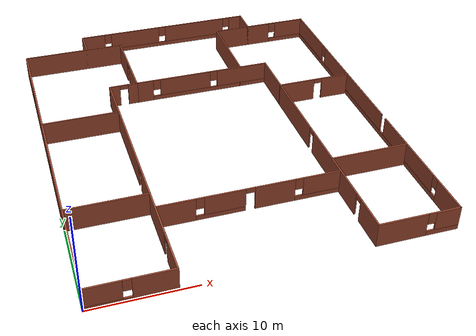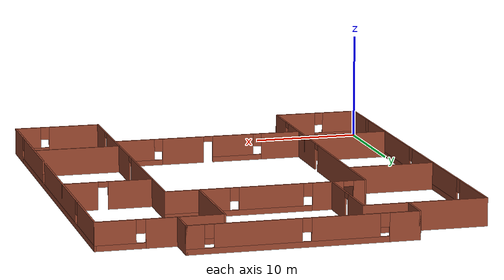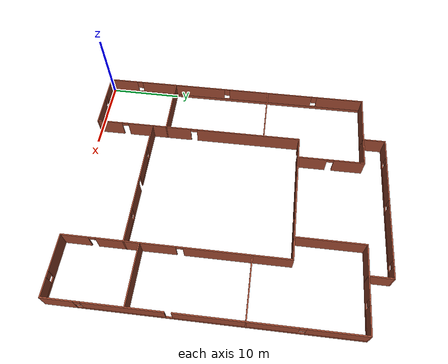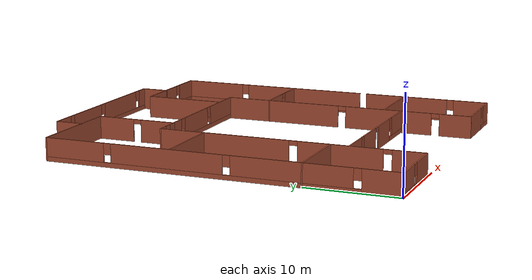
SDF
<?xml version='1.0'?>
<sdf version='1.6'>
  <model name='structure'>
    <pose frame=''>17 20.5 0 0 -0 0</pose>
    <link name='Wall_11'>
      <collision name='Wall_11_Collision'>
        <geometry>
          <box>
            <size>11.15 0.15 2.5</size>
          </box>
        </geometry>
        <pose frame=''>0 0 1.25 0 -0 0</pose>
      </collision>
      <visual name='Wall_11_Visual'>
        <pose frame=''>0 0 1.25 0 -0 0</pose>
        <geometry>
          <box>
            <size>11.15 0.15 2.5</size>
          </box>
        </geometry>
        <material>
          <script>
            <uri>file://media/materials/scripts/gazebo.material</uri>
            <name>Gazebo/Bricks</name>
          </script>
          <ambient>1 1 1 1</ambient>
        </material>
        <meta>
          <layer>0</layer>
        </meta>
      </visual>
      <pose frame=''>-11.5 17.5 0 0 -0 0</pose>
    </link>
    <link name='Wall_13'>
      <pose frame=''>-6 13 0 0 0 -1.5708</pose>
      <visual name='Wall_13_Visual_0'>
        <pose frame=''>-2.45369 0 1.25 0 -0 0</pose>
        <geometry>
          <box>
            <size>4.24262 0.15 2.5</size>
          </box>
        </geometry>
        <material>
          <script>
            <uri>file://media/materials/scripts/gazebo.material</uri>
            <name>Gazebo/Bricks</name>
          </script>
          <ambient>1 1 1 1</ambient>
        </material>
        <meta>
          <layer>0</layer>
        </meta>
      </visual>
      <collision name='Wall_13_Collision_0'>
        <geometry>
          <box>
            <size>4.24262 0.15 2.5</size>
          </box>
        </geometry>
        <pose frame=''>-2.45369 0 1.25 0 -0 0</pose>
      </collision>
      <visual name='Wall_13_Visual_1'>
        <pose frame=''>2.57131 0 1.25 0 -0 0</pose>
        <geometry>
          <box>
            <size>4.00738 0.15 2.5</size>
          </box>
        </geometry>
        <material>
          <script>
            <uri>file://media/materials/scripts/gazebo.material</uri>
            <name>Gazebo/Bricks</name>
          </script>
          <ambient>1 1 1 1</ambient>
        </material>
        <meta>
          <layer>0</layer>
        </meta>
      </visual>
      <collision name='Wall_13_Collision_1'>
        <geometry>
          <box>
            <size>4.00738 0.15 2.5</size>
          </box>
        </geometry>
        <pose frame=''>2.57131 0 1.25 0 -0 0</pose>
      </collision>
      <visual name='Wall_13_Visual_2'>
        <pose frame=''>0.117622 0 2.25 0 -0 0</pose>
        <geometry>
          <box>
            <size>0.9 0.15 0.5</size>
          </box>
        </geometry>
        <material>
          <script>
            <uri>file://media/materials/scripts/gazebo.material</uri>
            <name>Gazebo/Bricks</name>
          </script>
          <ambient>1 1 1 1</ambient>
        </material>
        <meta>
          <layer>0</layer>
        </meta>
      </visual>
      <collision name='Wall_13_Collision_2'>
        <geometry>
          <box>
            <size>0.9 0.15 0.5</size>
          </box>
        </geometry>
        <pose frame=''>0.117622 0 2.25 0 -0 0</pose>
      </collision>
    </link>
    <link name='Wall_15'>
      <pose frame=''>-7.5 8.5 0 0 -0 3.14159</pose>
      <visual name='Wall_15_Visual_0'>
        <pose frame=''>-1.03841 0 1.25 0 -0 0</pose>
        <geometry>
          <box>
            <size>1.07318 0.15 2.5</size>
          </box>
        </geometry>
        <material>
          <script>
            <uri>file://media/materials/scripts/gazebo.material</uri>
            <name>Gazebo/Bricks</name>
          </script>
          <ambient>1 1 1 1</ambient>
        </material>
        <meta>
          <layer>0</layer>
        </meta>
      </visual>
      <collision name='Wall_15_Collision_0'>
        <geometry>
          <box>
            <size>1.07318 0.15 2.5</size>
          </box>
        </geometry>
        <pose frame=''>-1.03841 0 1.25 0 -0 0</pose>
      </collision>
      <visual name='Wall_15_Visual_1'>
        <pose frame=''>0.98659 0 1.25 0 -0 0</pose>
        <geometry>
          <box>
            <size>1.17682 0.15 2.5</size>
          </box>
        </geometry>
        <material>
          <script>
            <uri>file://media/materials/scripts/gazebo.material</uri>
            <name>Gazebo/Bricks</name>
          </script>
          <ambient>1 1 1 1</ambient>
        </material>
        <meta>
          <layer>0</layer>
        </meta>
      </visual>
      <collision name='Wall_15_Collision_1'>
        <geometry>
          <box>
            <size>1.17682 0.15 2.5</size>
          </box>
        </geometry>
        <pose frame=''>0.98659 0 1.25 0 -0 0</pose>
      </collision>
      <visual name='Wall_15_Visual_2'>
        <pose frame=''>-0.051821 0 2.25 0 -0 0</pose>
        <geometry>
          <box>
            <size>0.9 0.15 0.5</size>
          </box>
        </geometry>
        <material>
          <script>
            <uri>file://media/materials/scripts/gazebo.material</uri>
            <name>Gazebo/Bricks</name>
          </script>
          <ambient>1 1 1 1</ambient>
        </material>
        <meta>
          <layer>0</layer>
        </meta>
      </visual>
      <collision name='Wall_15_Collision_2'>
        <geometry>
          <box>
            <size>0.9 0.15 0.5</size>
          </box>
        </geometry>
        <pose frame=''>-0.051821 0 2.25 0 -0 0</pose>
      </collision>
    </link>
    <link name='Wall_19'>
      <pose frame=''>-9 -6 0 0 0 -1.5708</pose>
      <visual name='Wall_19_Visual_0'>
        <pose frame=''>-7.2625 0 1.25 0 -0 0</pose>
        <geometry>
          <box>
            <size>14.625 0.15 2.5</size>
          </box>
        </geometry>
        <material>
          <script>
            <uri>file://media/materials/scripts/gazebo.material</uri>
            <name>Gazebo/Bricks</name>
          </script>
          <ambient>1 1 1 1</ambient>
        </material>
        <meta>
          <layer>0</layer>
        </meta>
      </visual>
      <collision name='Wall_19_Collision_0'>
        <geometry>
          <box>
            <size>14.625 0.15 2.5</size>
          </box>
        </geometry>
        <pose frame=''>-7.2625 0 1.25 0 -0 0</pose>
      </collision>
      <visual name='Wall_19_Visual_1'>
        <pose frame=''>5.5 0 1.25 0 -0 0</pose>
        <geometry>
          <box>
            <size>9.1 0.15 2.5</size>
          </box>
        </geometry>
        <material>
          <script>
            <uri>file://media/materials/scripts/gazebo.material</uri>
            <name>Gazebo/Bricks</name>
          </script>
          <ambient>1 1 1 1</ambient>
        </material>
        <meta>
          <layer>0</layer>
        </meta>
      </visual>
      <collision name='Wall_19_Collision_1'>
        <geometry>
          <box>
            <size>9.1 0.15 2.5</size>
          </box>
        </geometry>
        <pose frame=''>5.5 0 1.25 0 -0 0</pose>
      </collision>
      <visual name='Wall_19_Visual_2'>
        <pose frame=''>12.7625 0 1.25 0 -0 0</pose>
        <geometry>
          <box>
            <size>3.625 0.15 2.5</size>
          </box>
        </geometry>
        <material>
          <script>
            <uri>file://media/materials/scripts/gazebo.material</uri>
            <name>Gazebo/Bricks</name>
          </script>
          <ambient>1 1 1 1</ambient>
        </material>
        <meta>
          <layer>0</layer>
        </meta>
      </visual>
      <collision name='Wall_19_Collision_2'>
        <geometry>
          <box>
            <size>3.625 0.15 2.5</size>
          </box>
        </geometry>
        <pose frame=''>12.7625 0 1.25 0 -0 0</pose>
      </collision>
      <visual name='Wall_19_Visual_3'>
        <pose frame=''>0.5 0 2.25 0 -0 0</pose>
        <geometry>
          <box>
            <size>0.9 0.15 0.5</size>
          </box>
        </geometry>
        <material>
          <script>
            <uri>file://media/materials/scripts/gazebo.material</uri>
            <name>Gazebo/Bricks</name>
          </script>
          <ambient>1 1 1 1</ambient>
        </material>
        <meta>
          <layer>0</layer>
        </meta>
      </visual>
      <collision name='Wall_19_Collision_3'>
        <geometry>
          <box>
            <size>0.9 0.15 0.5</size>
          </box>
        </geometry>
        <pose frame=''>0.5 0 2.25 0 -0 0</pose>
      </collision>
      <visual name='Wall_19_Visual_4'>
        <pose frame=''>10.5 0 2.25 0 -0 0</pose>
        <geometry>
          <box>
            <size>0.9 0.15 0.5</size>
          </box>
        </geometry>
        <material>
          <script>
            <uri>file://media/materials/scripts/gazebo.material</uri>
            <name>Gazebo/Bricks</name>
          </script>
          <ambient>1 1 1 1</ambient>
        </material>
        <meta>
          <layer>0</layer>
        </meta>
      </visual>
      <collision name='Wall_19_Collision_4'>
        <geometry>
          <box>
            <size>0.9 0.15 0.5</size>
          </box>
        </geometry>
        <pose frame=''>10.5 0 2.25 0 -0 0</pose>
      </collision>
    </link>
    <link name='Wall_21'>
      <pose frame=''>-13 -20.5 0 0 -0 3.14159</pose>
      <visual name='Wall_21_Visual_0'>
        <pose frame=''>-2.10298 0 1.25 0 -0 0</pose>
        <geometry>
          <box>
            <size>3.94403 0.15 2.5</size>
          </box>
        </geometry>
        <material>
          <script>
            <uri>file://media/materials/scripts/gazebo.material</uri>
            <name>Gazebo/Bricks</name>
          </script>
          <ambient>1 1 1 1</ambient>
        </material>
        <meta>
          <layer>0</layer>
        </meta>
      </visual>
      <collision name='Wall_21_Collision_0'>
        <geometry>
          <box>
            <size>3.94403 0.15 2.5</size>
          </box>
        </geometry>
        <pose frame=''>-2.10298 0 1.25 0 -0 0</pose>
      </collision>
      <visual name='Wall_21_Visual_1'>
        <pose frame=''>1.97202 0 0.25 0 -0 0</pose>
        <geometry>
          <box>
            <size>4.20597 0.15 0.5</size>
          </box>
        </geometry>
        <material>
          <script>
            <uri>file://media/materials/scripts/gazebo.material</uri>
            <name>Gazebo/Bricks</name>
          </script>
          <ambient>1 1 1 1</ambient>
        </material>
        <meta>
          <layer>0</layer>
        </meta>
      </visual>
      <collision name='Wall_21_Collision_1'>
        <geometry>
          <box>
            <size>4.20597 0.15 0.5</size>
          </box>
        </geometry>
        <pose frame=''>1.97202 0 0.25 0 -0 0</pose>
      </collision>
      <visual name='Wall_21_Visual_2'>
        <pose frame=''>2.37202 0 1.5 0 -0 0</pose>
        <geometry>
          <box>
            <size>3.40597 0.15 2</size>
          </box>
        </geometry>
        <material>
          <script>
            <uri>file://media/materials/scripts/gazebo.material</uri>
            <name>Gazebo/Bricks</name>
          </script>
          <ambient>1 1 1 1</ambient>
        </material>
        <meta>
          <layer>0</layer>
        </meta>
      </visual>
      <collision name='Wall_21_Collision_2'>
        <geometry>
          <box>
            <size>3.40597 0.15 2</size>
          </box>
        </geometry>
        <pose frame=''>2.37202 0 1.5 0 -0 0</pose>
      </collision>
      <visual name='Wall_21_Visual_3'>
        <pose frame=''>0.269032 0 1.9 0 -0 0</pose>
        <geometry>
          <box>
            <size>0.8 0.15 1.2</size>
          </box>
        </geometry>
        <material>
          <script>
            <uri>file://media/materials/scripts/gazebo.material</uri>
            <name>Gazebo/Bricks</name>
          </script>
          <ambient>1 1 1 1</ambient>
        </material>
        <meta>
          <layer>0</layer>
        </meta>
      </visual>
      <collision name='Wall_21_Collision_3'>
        <geometry>
          <box>
            <size>0.8 0.15 1.2</size>
          </box>
        </geometry>
        <pose frame=''>0.269032 0 1.9 0 -0 0</pose>
      </collision>
    </link>
    <link name='Wall_23'>
      <collision name='Wall_23_Collision'>
        <geometry>
          <box>
            <size>8.15 0.15 2.5</size>
          </box>
        </geometry>
        <pose frame=''>0 0 1.25 0 -0 0</pose>
      </collision>
      <visual name='Wall_23_Visual'>
        <pose frame=''>0 0 1.25 0 -0 0</pose>
        <geometry>
          <box>
            <size>8.15 0.15 2.5</size>
          </box>
        </geometry>
        <material>
          <script>
            <uri>file://media/materials/scripts/gazebo.material</uri>
            <name>Gazebo/Bricks</name>
          </script>
          <ambient>1 1 1 1</ambient>
        </material>
        <meta>
          <layer>0</layer>
        </meta>
      </visual>
      <pose frame=''>-13 3.5 0 0 -0 3.14159</pose>
    </link>
    <link name='Wall_25'>
      <collision name='Wall_25_Collision'>
        <geometry>
          <box>
            <size>8.15 0.15 2.5</size>
          </box>
        </geometry>
        <pose frame=''>0 0 1.25 0 -0 0</pose>
      </collision>
      <visual name='Wall_25_Visual'>
        <pose frame=''>0 0 1.25 0 -0 0</pose>
        <geometry>
          <box>
            <size>8.15 0.15 2.5</size>
          </box>
        </geometry>
        <material>
          <script>
            <uri>file://media/materials/scripts/gazebo.material</uri>
            <name>Gazebo/Bricks</name>
          </script>
          <ambient>0.921569 0.807843 0.615686 1</ambient>
        </material>
        <meta>
          <layer>0</layer>
        </meta>
      </visual>
      <pose frame=''>-13 -10.5 0 0 -0 3.14159</pose>
    </link>
    <link name='Wall_27'>
      <pose frame=''>1e-06 -12.5 0 0 -0 0</pose>
      <visual name='Wall_27_Visual_0'>
        <pose frame=''>-7.15272 0 1.25 0 -0 0</pose>
        <geometry>
          <box>
            <size>3.84455 0.15 2.5</size>
          </box>
        </geometry>
        <material>
          <script>
            <uri>file://media/materials/scripts/gazebo.material</uri>
            <name>Gazebo/Bricks</name>
          </script>
          <ambient>0.921569 0.807843 0.615686 1</ambient>
        </material>
        <meta>
          <layer>0</layer>
        </meta>
      </visual>
      <collision name='Wall_27_Collision_0'>
        <geometry>
          <box>
            <size>3.84455 0.15 2.5</size>
          </box>
        </geometry>
        <pose frame=''>-7.15272 0 1.25 0 -0 0</pose>
      </collision>
      <visual name='Wall_27_Visual_1'>
        <pose frame=''>2.43616 0 1.25 0 -0 0</pose>
        <geometry>
          <box>
            <size>3.97232 0.15 2.5</size>
          </box>
        </geometry>
        <material>
          <script>
            <uri>file://media/materials/scripts/gazebo.material</uri>
            <name>Gazebo/Bricks</name>
          </script>
          <ambient>0.921569 0.807843 0.615686 1</ambient>
        </material>
        <meta>
          <layer>0</layer>
        </meta>
      </visual>
      <collision name='Wall_27_Collision_1'>
        <geometry>
          <box>
            <size>3.97232 0.15 2.5</size>
          </box>
        </geometry>
        <pose frame=''>2.43616 0 1.25 0 -0 0</pose>
      </collision>
      <visual name='Wall_27_Visual_2'>
        <pose frame=''>-2.84022 0 0.25 0 -0 0</pose>
        <geometry>
          <box>
            <size>4.78045 0.15 0.5</size>
          </box>
        </geometry>
        <material>
          <script>
            <uri>file://media/materials/scripts/gazebo.material</uri>
            <name>Gazebo/Bricks</name>
          </script>
          <ambient>0.921569 0.807843 0.615686 1</ambient>
        </material>
        <meta>
          <layer>0</layer>
        </meta>
      </visual>
      <collision name='Wall_27_Collision_2'>
        <geometry>
          <box>
            <size>4.78045 0.15 0.5</size>
          </box>
        </geometry>
        <pose frame=''>-2.84022 0 0.25 0 -0 0</pose>
      </collision>
      <visual name='Wall_27_Visual_3'>
        <pose frame=''>6.74866 0 0.25 0 -0 0</pose>
        <geometry>
          <box>
            <size>4.65268 0.15 0.5</size>
          </box>
        </geometry>
        <material>
          <script>
            <uri>file://media/materials/scripts/gazebo.material</uri>
            <name>Gazebo/Bricks</name>
          </script>
          <ambient>0.921569 0.807843 0.615686 1</ambient>
        </material>
        <meta>
          <layer>0</layer>
        </meta>
      </visual>
      <collision name='Wall_27_Collision_3'>
        <geometry>
          <box>
            <size>4.65268 0.15 0.5</size>
          </box>
        </geometry>
        <pose frame=''>6.74866 0 0.25 0 -0 0</pose>
      </collision>
      <visual name='Wall_27_Visual_4'>
        <pose frame=''>-2.44022 0 1.5 0 -0 0</pose>
        <geometry>
          <box>
            <size>3.98045 0.15 2</size>
          </box>
        </geometry>
        <material>
          <script>
            <uri>file://media/materials/scripts/gazebo.material</uri>
            <name>Gazebo/Bricks</name>
          </script>
          <ambient>0.921569 0.807843 0.615686 1</ambient>
        </material>
        <meta>
          <layer>0</layer>
        </meta>
      </visual>
      <collision name='Wall_27_Collision_4'>
        <geometry>
          <box>
            <size>3.98045 0.15 2</size>
          </box>
        </geometry>
        <pose frame=''>-2.44022 0 1.5 0 -0 0</pose>
      </collision>
      <visual name='Wall_27_Visual_5'>
        <pose frame=''>-2.44022 0 1.5 0 -0 0</pose>
        <geometry>
          <box>
            <size>3.98045 0.15 2</size>
          </box>
        </geometry>
        <material>
          <script>
            <uri>file://media/materials/scripts/gazebo.material</uri>
            <name>Gazebo/Bricks</name>
          </script>
          <ambient>0.921569 0.807843 0.615686 1</ambient>
        </material>
        <meta>
          <layer>0</layer>
        </meta>
      </visual>
      <collision name='Wall_27_Collision_5'>
        <geometry>
          <box>
            <size>3.98045 0.15 2</size>
          </box>
        </geometry>
        <pose frame=''>-2.44022 0 1.5 0 -0 0</pose>
      </collision>
      <visual name='Wall_27_Visual_6'>
        <pose frame=''>7.14866 0 1.5 0 -0 0</pose>
        <geometry>
          <box>
            <size>3.85268 0.15 2</size>
          </box>
        </geometry>
        <material>
          <script>
            <uri>file://media/materials/scripts/gazebo.material</uri>
            <name>Gazebo/Bricks</name>
          </script>
          <ambient>0.921569 0.807843 0.615686 1</ambient>
        </material>
        <meta>
          <layer>0</layer>
        </meta>
      </visual>
      <collision name='Wall_27_Collision_6'>
        <geometry>
          <box>
            <size>3.85268 0.15 2</size>
          </box>
        </geometry>
        <pose frame=''>7.14866 0 1.5 0 -0 0</pose>
      </collision>
      <visual name='Wall_27_Visual_7'>
        <pose frame=''>-4.83045 0 1.9 0 -0 0</pose>
        <geometry>
          <box>
            <size>0.8 0.15 1.2</size>
          </box>
        </geometry>
        <material>
          <script>
            <uri>file://media/materials/scripts/gazebo.material</uri>
            <name>Gazebo/Bricks</name>
          </script>
          <ambient>0.921569 0.807843 0.615686 1</ambient>
        </material>
        <meta>
          <layer>0</layer>
        </meta>
      </visual>
      <collision name='Wall_27_Collision_7'>
        <geometry>
          <box>
            <size>0.8 0.15 1.2</size>
          </box>
        </geometry>
        <pose frame=''>-4.83045 0 1.9 0 -0 0</pose>
      </collision>
      <visual name='Wall_27_Visual_8'>
        <pose frame=''>4.82232 0 1.9 0 -0 0</pose>
        <geometry>
          <box>
            <size>0.8 0.15 1.2</size>
          </box>
        </geometry>
        <material>
          <script>
            <uri>file://media/materials/scripts/gazebo.material</uri>
            <name>Gazebo/Bricks</name>
          </script>
          <ambient>0.921569 0.807843 0.615686 1</ambient>
        </material>
        <meta>
          <layer>0</layer>
        </meta>
      </visual>
      <collision name='Wall_27_Collision_8'>
        <geometry>
          <box>
            <size>0.8 0.15 1.2</size>
          </box>
        </geometry>
        <pose frame=''>4.82232 0 1.9 0 -0 0</pose>
      </collision>
      <visual name='Wall_27_Visual_9'>
        <pose frame=''>0 0 2.25 0 -0 0</pose>
        <geometry>
          <box>
            <size>0.9 0.15 0.5</size>
          </box>
        </geometry>
        <material>
          <script>
            <uri>file://media/materials/scripts/gazebo.material</uri>
            <name>Gazebo/Bricks</name>
          </script>
          <ambient>0.921569 0.807843 0.615686 1</ambient>
        </material>
        <meta>
          <layer>0</layer>
        </meta>
      </visual>
      <collision name='Wall_27_Collision_9'>
        <geometry>
          <box>
            <size>0.9 0.15 0.5</size>
          </box>
        </geometry>
        <pose frame=''>0 0 2.25 0 -0 0</pose>
      </collision>
      <visual name='Wall_27_Visual_10'>
        <pose frame=''>0 0 2.25 0 -0 0</pose>
        <geometry>
          <box>
            <size>0.9 0.15 0.5</size>
          </box>
        </geometry>
        <material>
          <script>
            <uri>file://media/materials/scripts/gazebo.material</uri>
            <name>Gazebo/Bricks</name>
          </script>
          <ambient>0.921569 0.807843 0.615686 1</ambient>
        </material>
        <meta>
          <layer>0</layer>
        </meta>
      </visual>
      <collision name='Wall_27_Collision_10'>
        <geometry>
          <box>
            <size>0.9 0.15 0.5</size>
          </box>
        </geometry>
        <pose frame=''>0 0 2.25 0 -0 0</pose>
      </collision>
    </link>
    <link name='Wall_29'>
      <pose frame=''>1.5 8.5 0 0 -0 0</pose>
      <visual name='Wall_29_Visual_0'>
        <pose frame=''>-6.61866 0 1.25 0 -0 0</pose>
        <geometry>
          <box>
            <size>1.91268 0.15 2.5</size>
          </box>
        </geometry>
        <material>
          <script>
            <uri>file://media/materials/scripts/gazebo.material</uri>
            <name>Gazebo/Bricks</name>
          </script>
          <ambient>1 1 1 1</ambient>
        </material>
        <meta>
          <layer>0</layer>
        </meta>
      </visual>
      <collision name='Wall_29_Collision_0'>
        <geometry>
          <box>
            <size>1.91268 0.15 2.5</size>
          </box>
        </geometry>
        <pose frame=''>-6.61866 0 1.25 0 -0 0</pose>
      </collision>
      <visual name='Wall_29_Visual_1'>
        <pose frame=''>0.956339 0 0.25 0 -0 0</pose>
        <geometry>
          <box>
            <size>13.2373 0.15 0.5</size>
          </box>
        </geometry>
        <material>
          <script>
            <uri>file://media/materials/scripts/gazebo.material</uri>
            <name>Gazebo/Bricks</name>
          </script>
          <ambient>1 1 1 1</ambient>
        </material>
        <meta>
          <layer>0</layer>
        </meta>
      </visual>
      <collision name='Wall_29_Collision_1'>
        <geometry>
          <box>
            <size>13.2373 0.15 0.5</size>
          </box>
        </geometry>
        <pose frame=''>0.956339 0 0.25 0 -0 0</pose>
      </collision>
      <visual name='Wall_29_Visual_2'>
        <pose frame=''>-1.96235 0 1.5 0 -0 0</pose>
        <geometry>
          <box>
            <size>5.79994 0.15 2</size>
          </box>
        </geometry>
        <material>
          <script>
            <uri>file://media/materials/scripts/gazebo.material</uri>
            <name>Gazebo/Bricks</name>
          </script>
          <ambient>1 1 1 1</ambient>
        </material>
        <meta>
          <layer>0</layer>
        </meta>
      </visual>
      <collision name='Wall_29_Collision_2'>
        <geometry>
          <box>
            <size>5.79994 0.15 2</size>
          </box>
        </geometry>
        <pose frame=''>-1.96235 0 1.5 0 -0 0</pose>
      </collision>
      <visual name='Wall_29_Visual_3'>
        <pose frame=''>4.65631 0 1.5 0 -0 0</pose>
        <geometry>
          <box>
            <size>5.83739 0.15 2</size>
          </box>
        </geometry>
        <material>
          <script>
            <uri>file://media/materials/scripts/gazebo.material</uri>
            <name>Gazebo/Bricks</name>
          </script>
          <ambient>1 1 1 1</ambient>
        </material>
        <meta>
          <layer>0</layer>
        </meta>
      </visual>
      <collision name='Wall_29_Collision_3'>
        <geometry>
          <box>
            <size>5.83739 0.15 2</size>
          </box>
        </geometry>
        <pose frame=''>4.65631 0 1.5 0 -0 0</pose>
      </collision>
      <visual name='Wall_29_Visual_4'>
        <pose frame=''>-5.26232 0 1.9 0 -0 0</pose>
        <geometry>
          <box>
            <size>0.8 0.15 1.2</size>
          </box>
        </geometry>
        <material>
          <script>
            <uri>file://media/materials/scripts/gazebo.material</uri>
            <name>Gazebo/Bricks</name>
          </script>
          <ambient>1 1 1 1</ambient>
        </material>
        <meta>
          <layer>0</layer>
        </meta>
      </visual>
      <collision name='Wall_29_Collision_4'>
        <geometry>
          <box>
            <size>0.8 0.15 1.2</size>
          </box>
        </geometry>
        <pose frame=''>-5.26232 0 1.9 0 -0 0</pose>
      </collision>
      <visual name='Wall_29_Visual_5'>
        <pose frame=''>1.33761 0 1.9 0 -0 0</pose>
        <geometry>
          <box>
            <size>0.8 0.15 1.2</size>
          </box>
        </geometry>
        <material>
          <script>
            <uri>file://media/materials/scripts/gazebo.material</uri>
            <name>Gazebo/Bricks</name>
          </script>
          <ambient>1 1 1 1</ambient>
        </material>
        <meta>
          <layer>0</layer>
        </meta>
      </visual>
      <collision name='Wall_29_Collision_5'>
        <geometry>
          <box>
            <size>0.8 0.15 1.2</size>
          </box>
        </geometry>
        <pose frame=''>1.33761 0 1.9 0 -0 0</pose>
      </collision>
    </link>
    <link name='Wall_31'>
      <pose frame=''>9 -6 0 0 0 -1.5708</pose>
      <visual name='Wall_31_Visual_0'>
        <pose frame=''>-7.7625 0 1.25 0 -0 0</pose>
        <geometry>
          <box>
            <size>13.625 0.15 2.5</size>
          </box>
        </geometry>
        <material>
          <script>
            <uri>file://media/materials/scripts/gazebo.material</uri>
            <name>Gazebo/Bricks</name>
          </script>
          <ambient>1 1 1 1</ambient>
        </material>
        <meta>
          <layer>0</layer>
        </meta>
      </visual>
      <collision name='Wall_31_Collision_0'>
        <geometry>
          <box>
            <size>13.625 0.15 2.5</size>
          </box>
        </geometry>
        <pose frame=''>-7.7625 0 1.25 0 -0 0</pose>
      </collision>
      <visual name='Wall_31_Visual_1'>
        <pose frame=''>5 0 1.25 0 -0 0</pose>
        <geometry>
          <box>
            <size>10.1 0.15 2.5</size>
          </box>
        </geometry>
        <material>
          <script>
            <uri>file://media/materials/scripts/gazebo.material</uri>
            <name>Gazebo/Bricks</name>
          </script>
          <ambient>1 1 1 1</ambient>
        </material>
        <meta>
          <layer>0</layer>
        </meta>
      </visual>
      <collision name='Wall_31_Collision_1'>
        <geometry>
          <box>
            <size>10.1 0.15 2.5</size>
          </box>
        </geometry>
        <pose frame=''>5 0 1.25 0 -0 0</pose>
      </collision>
      <visual name='Wall_31_Visual_2'>
        <pose frame=''>12.7625 0 1.25 0 -0 0</pose>
        <geometry>
          <box>
            <size>3.625 0.15 2.5</size>
          </box>
        </geometry>
        <material>
          <script>
            <uri>file://media/materials/scripts/gazebo.material</uri>
            <name>Gazebo/Bricks</name>
          </script>
          <ambient>1 1 1 1</ambient>
        </material>
        <meta>
          <layer>0</layer>
        </meta>
      </visual>
      <collision name='Wall_31_Collision_2'>
        <geometry>
          <box>
            <size>3.625 0.15 2.5</size>
          </box>
        </geometry>
        <pose frame=''>12.7625 0 1.25 0 -0 0</pose>
      </collision>
      <visual name='Wall_31_Visual_3'>
        <pose frame=''>-0.5 0 2.25 0 -0 0</pose>
        <geometry>
          <box>
            <size>0.9 0.15 0.5</size>
          </box>
        </geometry>
        <material>
          <script>
            <uri>file://media/materials/scripts/gazebo.material</uri>
            <name>Gazebo/Bricks</name>
          </script>
          <ambient>1 1 1 1</ambient>
        </material>
        <meta>
          <layer>0</layer>
        </meta>
      </visual>
      <collision name='Wall_31_Collision_3'>
        <geometry>
          <box>
            <size>0.9 0.15 0.5</size>
          </box>
        </geometry>
        <pose frame=''>-0.5 0 2.25 0 -0 0</pose>
      </collision>
      <visual name='Wall_31_Visual_4'>
        <pose frame=''>10.5 0 2.25 0 -0 0</pose>
        <geometry>
          <box>
            <size>0.9 0.15 0.5</size>
          </box>
        </geometry>
        <material>
          <script>
            <uri>file://media/materials/scripts/gazebo.material</uri>
            <name>Gazebo/Bricks</name>
          </script>
          <ambient>1 1 1 1</ambient>
        </material>
        <meta>
          <layer>0</layer>
        </meta>
      </visual>
      <collision name='Wall_31_Collision_4'>
        <geometry>
          <box>
            <size>0.9 0.15 0.5</size>
          </box>
        </geometry>
        <pose frame=''>10.5 0 2.25 0 -0 0</pose>
      </collision>
    </link>
    <link name='Wall_33'>
      <pose frame=''>13 -20.5 0 0 -0 0</pose>
      <visual name='Wall_33_Visual_0'>
        <pose frame=''>-1.62137 0 1.25 0 -0 0</pose>
        <geometry>
          <box>
            <size>4.90725 0.15 2.5</size>
          </box>
        </geometry>
        <material>
          <script>
            <uri>file://media/materials/scripts/gazebo.material</uri>
            <name>Gazebo/Bricks</name>
          </script>
          <ambient>1 1 1 1</ambient>
        </material>
        <meta>
          <layer>0</layer>
        </meta>
      </visual>
      <collision name='Wall_33_Collision_0'>
        <geometry>
          <box>
            <size>4.90725 0.15 2.5</size>
          </box>
        </geometry>
        <pose frame=''>-1.62137 0 1.25 0 -0 0</pose>
      </collision>
      <visual name='Wall_33_Visual_1'>
        <pose frame=''>2.45363 0 0.25 0 -0 0</pose>
        <geometry>
          <box>
            <size>3.24275 0.15 0.5</size>
          </box>
        </geometry>
        <material>
          <script>
            <uri>file://media/materials/scripts/gazebo.material</uri>
            <name>Gazebo/Bricks</name>
          </script>
          <ambient>1 1 1 1</ambient>
        </material>
        <meta>
          <layer>0</layer>
        </meta>
      </visual>
      <collision name='Wall_33_Collision_1'>
        <geometry>
          <box>
            <size>3.24275 0.15 0.5</size>
          </box>
        </geometry>
        <pose frame=''>2.45363 0 0.25 0 -0 0</pose>
      </collision>
      <visual name='Wall_33_Visual_2'>
        <pose frame=''>2.85363 0 1.5 0 -0 0</pose>
        <geometry>
          <box>
            <size>2.44275 0.15 2</size>
          </box>
        </geometry>
        <material>
          <script>
            <uri>file://media/materials/scripts/gazebo.material</uri>
            <name>Gazebo/Bricks</name>
          </script>
          <ambient>1 1 1 1</ambient>
        </material>
        <meta>
          <layer>0</layer>
        </meta>
      </visual>
      <collision name='Wall_33_Collision_2'>
        <geometry>
          <box>
            <size>2.44275 0.15 2</size>
          </box>
        </geometry>
        <pose frame=''>2.85363 0 1.5 0 -0 0</pose>
      </collision>
      <visual name='Wall_33_Visual_3'>
        <pose frame=''>1.23225 0 1.9 0 -0 0</pose>
        <geometry>
          <box>
            <size>0.8 0.15 1.2</size>
          </box>
        </geometry>
        <material>
          <script>
            <uri>file://media/materials/scripts/gazebo.material</uri>
            <name>Gazebo/Bricks</name>
          </script>
          <ambient>1 1 1 1</ambient>
        </material>
        <meta>
          <layer>0</layer>
        </meta>
      </visual>
      <collision name='Wall_33_Collision_3'>
        <geometry>
          <box>
            <size>0.8 0.15 1.2</size>
          </box>
        </geometry>
        <pose frame=''>1.23225 0 1.9 0 -0 0</pose>
      </collision>
    </link>
    <link name='Wall_35'>
      <pose frame=''>13 3.5 0 0 -0 0</pose>
      <visual name='Wall_35_Visual_0'>
        <pose frame=''>-2.04491 0 1.25 0 -0 0</pose>
        <geometry>
          <box>
            <size>4.06018 0.15 2.5</size>
          </box>
        </geometry>
        <material>
          <script>
            <uri>file://media/materials/scripts/gazebo.material</uri>
            <name>Gazebo/Bricks</name>
          </script>
          <ambient>1 1 1 1</ambient>
        </material>
        <meta>
          <layer>0</layer>
        </meta>
      </visual>
      <collision name='Wall_35_Collision_0'>
        <geometry>
          <box>
            <size>4.06018 0.15 2.5</size>
          </box>
        </geometry>
        <pose frame=''>-2.04491 0 1.25 0 -0 0</pose>
      </collision>
      <visual name='Wall_35_Visual_1'>
        <pose frame=''>2.48009 0 1.25 0 -0 0</pose>
        <geometry>
          <box>
            <size>3.18982 0.15 2.5</size>
          </box>
        </geometry>
        <material>
          <script>
            <uri>file://media/materials/scripts/gazebo.material</uri>
            <name>Gazebo/Bricks</name>
          </script>
          <ambient>1 1 1 1</ambient>
        </material>
        <meta>
          <layer>0</layer>
        </meta>
      </visual>
      <collision name='Wall_35_Collision_1'>
        <geometry>
          <box>
            <size>3.18982 0.15 2.5</size>
          </box>
        </geometry>
        <pose frame=''>2.48009 0 1.25 0 -0 0</pose>
      </collision>
      <visual name='Wall_35_Visual_2'>
        <pose frame=''>0.435177 0 2.25 0 -0 0</pose>
        <geometry>
          <box>
            <size>0.9 0.15 0.5</size>
          </box>
        </geometry>
        <material>
          <script>
            <uri>file://media/materials/scripts/gazebo.material</uri>
            <name>Gazebo/Bricks</name>
          </script>
          <ambient>1 1 1 1</ambient>
        </material>
        <meta>
          <layer>0</layer>
        </meta>
      </visual>
      <collision name='Wall_35_Collision_2'>
        <geometry>
          <box>
            <size>0.9 0.15 0.5</size>
          </box>
        </geometry>
        <pose frame=''>0.435177 0 2.25 0 -0 0</pose>
      </collision>
    </link>
    <link name='Wall_37'>
      <collision name='Wall_37_Collision'>
        <geometry>
          <box>
            <size>8.15 0.15 2.5</size>
          </box>
        </geometry>
        <pose frame=''>0 0 1.25 0 -0 0</pose>
      </collision>
      <visual name='Wall_37_Visual'>
        <pose frame=''>0 0 1.25 0 -0 0</pose>
        <geometry>
          <box>
            <size>8.15 0.15 2.5</size>
          </box>
        </geometry>
        <material>
          <script>
            <uri>file://media/materials/scripts/gazebo.material</uri>
            <name>Gazebo/Bricks</name>
          </script>
          <ambient>1 1 1 1</ambient>
        </material>
        <meta>
          <layer>0</layer>
        </meta>
      </visual>
      <pose frame=''>13 -10.5 0 0 -0 0</pose>
    </link>
    <link name='Wall_39'>
      <pose frame=''>17 -1.5 0 0 -0 1.5708</pose>
      <visual name='Wall_39_Visual_0'>
        <pose frame=''>-17.0517 0 1.25 0 -0 0</pose>
        <geometry>
          <box>
            <size>4.04653 0.15 2.5</size>
          </box>
        </geometry>
        <material>
          <script>
            <uri>file://media/materials/scripts/gazebo.material</uri>
            <name>Gazebo/Bricks</name>
          </script>
          <ambient>1 1 1 1</ambient>
        </material>
        <meta>
          <layer>0</layer>
        </meta>
      </visual>
      <collision name='Wall_39_Collision_0'>
        <geometry>
          <box>
            <size>4.04653 0.15 2.5</size>
          </box>
        </geometry>
        <pose frame=''>-17.0517 0 1.25 0 -0 0</pose>
      </collision>
      <visual name='Wall_39_Visual_1'>
        <pose frame=''>2.02327 0 0.25 0 -0 0</pose>
        <geometry>
          <box>
            <size>34.1035 0.15 0.5</size>
          </box>
        </geometry>
        <material>
          <script>
            <uri>file://media/materials/scripts/gazebo.material</uri>
            <name>Gazebo/Bricks</name>
          </script>
          <ambient>1 1 1 1</ambient>
        </material>
        <meta>
          <layer>0</layer>
        </meta>
      </visual>
      <collision name='Wall_39_Collision_1'>
        <geometry>
          <box>
            <size>34.1035 0.15 0.5</size>
          </box>
        </geometry>
        <pose frame=''>2.02327 0 0.25 0 -0 0</pose>
      </collision>
      <visual name='Wall_39_Visual_2'>
        <pose frame=''>-9.28932 0 1.5 0 -0 0</pose>
        <geometry>
          <box>
            <size>9.8783 0.15 2</size>
          </box>
        </geometry>
        <material>
          <script>
            <uri>file://media/materials/scripts/gazebo.material</uri>
            <name>Gazebo/Bricks</name>
          </script>
          <ambient>1 1 1 1</ambient>
        </material>
        <meta>
          <layer>0</layer>
        </meta>
      </visual>
      <collision name='Wall_39_Collision_2'>
        <geometry>
          <box>
            <size>9.8783 0.15 2</size>
          </box>
        </geometry>
        <pose frame=''>-9.28932 0 1.5 0 -0 0</pose>
      </collision>
      <visual name='Wall_39_Visual_3'>
        <pose frame=''>3.74165 0 1.5 0 -0 0</pose>
        <geometry>
          <box>
            <size>14.5836 0.15 2</size>
          </box>
        </geometry>
        <material>
          <script>
            <uri>file://media/materials/scripts/gazebo.material</uri>
            <name>Gazebo/Bricks</name>
          </script>
          <ambient>1 1 1 1</ambient>
        </material>
        <meta>
          <layer>0</layer>
        </meta>
      </visual>
      <collision name='Wall_39_Collision_3'>
        <geometry>
          <box>
            <size>14.5836 0.15 2</size>
          </box>
        </geometry>
        <pose frame=''>3.74165 0 1.5 0 -0 0</pose>
      </collision>
      <visual name='Wall_39_Visual_4'>
        <pose frame=''>15.4542 0 1.5 0 -0 0</pose>
        <geometry>
          <box>
            <size>7.24153 0.15 2</size>
          </box>
        </geometry>
        <material>
          <script>
            <uri>file://media/materials/scripts/gazebo.material</uri>
            <name>Gazebo/Bricks</name>
          </script>
          <ambient>1 1 1 1</ambient>
        </material>
        <meta>
          <layer>0</layer>
        </meta>
      </visual>
      <collision name='Wall_39_Collision_4'>
        <geometry>
          <box>
            <size>7.24153 0.15 2</size>
          </box>
        </geometry>
        <pose frame=''>15.4542 0 1.5 0 -0 0</pose>
      </collision>
      <visual name='Wall_39_Visual_5'>
        <pose frame=''>-14.6285 0 1.9 0 -0 0</pose>
        <geometry>
          <box>
            <size>0.8 0.15 1.2</size>
          </box>
        </geometry>
        <material>
          <script>
            <uri>file://media/materials/scripts/gazebo.material</uri>
            <name>Gazebo/Bricks</name>
          </script>
          <ambient>1 1 1 1</ambient>
        </material>
        <meta>
          <layer>0</layer>
        </meta>
      </visual>
      <collision name='Wall_39_Collision_5'>
        <geometry>
          <box>
            <size>0.8 0.15 1.2</size>
          </box>
        </geometry>
        <pose frame=''>-14.6285 0 1.9 0 -0 0</pose>
      </collision>
      <visual name='Wall_39_Visual_6'>
        <pose frame=''>-4.35017 0 1.9 0 -0 0</pose>
        <geometry>
          <box>
            <size>0.0001 0.15 1.2</size>
          </box>
        </geometry>
        <material>
          <script>
            <uri>file://media/materials/scripts/gazebo.material</uri>
            <name>Gazebo/Bricks</name>
          </script>
          <ambient>1 1 1 1</ambient>
        </material>
        <meta>
          <layer>0</layer>
        </meta>
      </visual>
      <collision name='Wall_39_Collision_6'>
        <geometry>
          <box>
            <size>0.0001 0.15 1.2</size>
          </box>
        </geometry>
        <pose frame=''>-4.35017 0 1.9 0 -0 0</pose>
      </collision>
      <visual name='Wall_39_Visual_7'>
        <pose frame=''>11.4335 0 1.9 0 -0 0</pose>
        <geometry>
          <box>
            <size>0.8 0.15 1.2</size>
          </box>
        </geometry>
        <material>
          <script>
            <uri>file://media/materials/scripts/gazebo.material</uri>
            <name>Gazebo/Bricks</name>
          </script>
          <ambient>1 1 1 1</ambient>
        </material>
        <meta>
          <layer>0</layer>
        </meta>
      </visual>
      <collision name='Wall_39_Collision_7'>
        <geometry>
          <box>
            <size>0.8 0.15 1.2</size>
          </box>
        </geometry>
        <pose frame=''>11.4335 0 1.9 0 -0 0</pose>
      </collision>
    </link>
    <link name='Wall_41'>
      <collision name='Wall_41_Collision'>
        <geometry>
          <box>
            <size>9.15 0.15 2.5</size>
          </box>
        </geometry>
        <pose frame=''>0 0 1.25 0 -0 0</pose>
      </collision>
      <visual name='Wall_41_Visual'>
        <pose frame=''>0 0 1.25 0 -0 0</pose>
        <geometry>
          <box>
            <size>9.15 0.15 2.5</size>
          </box>
        </geometry>
        <material>
          <script>
            <uri>file://media/materials/scripts/gazebo.material</uri>
            <name>Gazebo/Bricks</name>
          </script>
          <ambient>1 1 1 1</ambient>
        </material>
        <meta>
          <layer>0</layer>
        </meta>
      </visual>
      <pose frame=''>6 13 0 0 -0 1.5708</pose>
    </link>
    <link name='Wall_43'>
      <pose frame=''>11.5 17.5 0 0 -0 0</pose>
      <visual name='Wall_43_Visual_0'>
        <pose frame=''>-2.17048 0 1.25 0 -0 0</pose>
        <geometry>
          <box>
            <size>6.80905 0.15 2.5</size>
          </box>
        </geometry>
        <material>
          <script>
            <uri>file://media/materials/scripts/gazebo.material</uri>
            <name>Gazebo/Bricks</name>
          </script>
          <ambient>1 1 1 1</ambient>
        </material>
        <meta>
          <layer>0</layer>
        </meta>
      </visual>
      <collision name='Wall_43_Collision_0'>
        <geometry>
          <box>
            <size>6.80905 0.15 2.5</size>
          </box>
        </geometry>
        <pose frame=''>-2.17048 0 1.25 0 -0 0</pose>
      </collision>
      <visual name='Wall_43_Visual_1'>
        <pose frame=''>3.40452 0 0.25 0 -0 0</pose>
        <geometry>
          <box>
            <size>4.34095 0.15 0.5</size>
          </box>
        </geometry>
        <material>
          <script>
            <uri>file://media/materials/scripts/gazebo.material</uri>
            <name>Gazebo/Bricks</name>
          </script>
          <ambient>1 1 1 1</ambient>
        </material>
        <meta>
          <layer>0</layer>
        </meta>
      </visual>
      <collision name='Wall_43_Collision_1'>
        <geometry>
          <box>
            <size>4.34095 0.15 0.5</size>
          </box>
        </geometry>
        <pose frame=''>3.40452 0 0.25 0 -0 0</pose>
      </collision>
      <visual name='Wall_43_Visual_2'>
        <pose frame=''>3.80452 0 1.5 0 -0 0</pose>
        <geometry>
          <box>
            <size>3.54095 0.15 2</size>
          </box>
        </geometry>
        <material>
          <script>
            <uri>file://media/materials/scripts/gazebo.material</uri>
            <name>Gazebo/Bricks</name>
          </script>
          <ambient>1 1 1 1</ambient>
        </material>
        <meta>
          <layer>0</layer>
        </meta>
      </visual>
      <collision name='Wall_43_Collision_2'>
        <geometry>
          <box>
            <size>3.54095 0.15 2</size>
          </box>
        </geometry>
        <pose frame=''>3.80452 0 1.5 0 -0 0</pose>
      </collision>
      <visual name='Wall_43_Visual_3'>
        <pose frame=''>1.63405 0 1.9 0 -0 0</pose>
        <geometry>
          <box>
            <size>0.8 0.15 1.2</size>
          </box>
        </geometry>
        <material>
          <script>
            <uri>file://media/materials/scripts/gazebo.material</uri>
            <name>Gazebo/Bricks</name>
          </script>
          <ambient>1 1 1 1</ambient>
        </material>
        <meta>
          <layer>0</layer>
        </meta>
      </visual>
      <collision name='Wall_43_Collision_3'>
        <geometry>
          <box>
            <size>0.8 0.15 1.2</size>
          </box>
        </geometry>
        <pose frame=''>1.63405 0 1.9 0 -0 0</pose>
      </collision>
    </link>
    <link name='Wall_45'>
      <collision name='Wall_45_Collision'>
        <geometry>
          <box>
            <size>3.15 0.15 2.5</size>
          </box>
        </geometry>
        <pose frame=''>0 0 1.25 0 -0 0</pose>
      </collision>
      <visual name='Wall_45_Visual'>
        <pose frame=''>0 0 1.25 0 -0 0</pose>
        <geometry>
          <box>
            <size>3.15 0.15 2.5</size>
          </box>
        </geometry>
        <material>
          <script>
            <uri>file://media/materials/scripts/gazebo.material</uri>
            <name>Gazebo/Bricks</name>
          </script>
          <ambient>1 1 1 1</ambient>
        </material>
        <meta>
          <layer>0</layer>
        </meta>
      </visual>
      <pose frame=''>-10 19 0 0 -0 1.5708</pose>
    </link>
    <link name='Wall_47'>
      <collision name='Wall_47_Collision'>
        <geometry>
          <box>
            <size>3.15 0.15 2.5</size>
          </box>
        </geometry>
        <pose frame=''>0 0 1.25 0 -0 0</pose>
      </collision>
      <visual name='Wall_47_Visual'>
        <pose frame=''>0 0 1.25 0 -0 0</pose>
        <geometry>
          <box>
            <size>3.15 0.15 2.5</size>
          </box>
        </geometry>
        <material>
          <script>
            <uri>file://media/materials/scripts/gazebo.material</uri>
            <name>Gazebo/Bricks</name>
          </script>
          <ambient>1 1 1 1</ambient>
        </material>
        <meta>
          <layer>0</layer>
        </meta>
      </visual>
      <pose frame=''>10 19 0 0 -0 1.5708</pose>
    </link>
    <link name='Wall_49'>
      <pose frame=''>1e-06 20.5 0 0 -0 0</pose>
      <visual name='Wall_49_Visual_0'>
        <pose frame=''>-8.7108 0 1.25 0 -0 0</pose>
        <geometry>
          <box>
            <size>2.72839 0.15 2.5</size>
          </box>
        </geometry>
        <material>
          <script>
            <uri>file://media/materials/scripts/gazebo.material</uri>
            <name>Gazebo/Bricks</name>
          </script>
          <ambient>1 1 1 1</ambient>
        </material>
        <meta>
          <layer>0</layer>
        </meta>
      </visual>
      <collision name='Wall_49_Collision_0'>
        <geometry>
          <box>
            <size>2.72839 0.15 2.5</size>
          </box>
        </geometry>
        <pose frame=''>-8.7108 0 1.25 0 -0 0</pose>
      </collision>
      <visual name='Wall_49_Visual_1'>
        <pose frame=''>1.3642 0 0.25 0 -0 0</pose>
        <geometry>
          <box>
            <size>17.4216 0.15 0.5</size>
          </box>
        </geometry>
        <material>
          <script>
            <uri>file://media/materials/scripts/gazebo.material</uri>
            <name>Gazebo/Bricks</name>
          </script>
          <ambient>1 1 1 1</ambient>
        </material>
        <meta>
          <layer>0</layer>
        </meta>
      </visual>
      <collision name='Wall_49_Collision_1'>
        <geometry>
          <box>
            <size>17.4216 0.15 0.5</size>
          </box>
        </geometry>
        <pose frame=''>1.3642 0 0.25 0 -0 0</pose>
      </collision>
      <visual name='Wall_49_Visual_2'>
        <pose frame=''>-3.57643 0 1.5 0 -0 0</pose>
        <geometry>
          <box>
            <size>5.94036 0.15 2</size>
          </box>
        </geometry>
        <material>
          <script>
            <uri>file://media/materials/scripts/gazebo.material</uri>
            <name>Gazebo/Bricks</name>
          </script>
          <ambient>1 1 1 1</ambient>
        </material>
        <meta>
          <layer>0</layer>
        </meta>
      </visual>
      <collision name='Wall_49_Collision_2'>
        <geometry>
          <box>
            <size>5.94036 0.15 2</size>
          </box>
        </geometry>
        <pose frame=''>-3.57643 0 1.5 0 -0 0</pose>
      </collision>
      <visual name='Wall_49_Visual_3'>
        <pose frame=''>3.93627 0 1.5 0 -0 0</pose>
        <geometry>
          <box>
            <size>7.48503 0.15 2</size>
          </box>
        </geometry>
        <material>
          <script>
            <uri>file://media/materials/scripts/gazebo.material</uri>
            <name>Gazebo/Bricks</name>
          </script>
          <ambient>1 1 1 1</ambient>
        </material>
        <meta>
          <layer>0</layer>
        </meta>
      </visual>
      <collision name='Wall_49_Collision_3'>
        <geometry>
          <box>
            <size>7.48503 0.15 2</size>
          </box>
        </geometry>
        <pose frame=''>3.93627 0 1.5 0 -0 0</pose>
      </collision>
      <visual name='Wall_49_Visual_4'>
        <pose frame=''>9.27689 0 1.5 0 -0 0</pose>
        <geometry>
          <box>
            <size>1.59622 0.15 2</size>
          </box>
        </geometry>
        <material>
          <script>
            <uri>file://media/materials/scripts/gazebo.material</uri>
            <name>Gazebo/Bricks</name>
          </script>
          <ambient>1 1 1 1</ambient>
        </material>
        <meta>
          <layer>0</layer>
        </meta>
      </visual>
      <collision name='Wall_49_Collision_4'>
        <geometry>
          <box>
            <size>1.59622 0.15 2</size>
          </box>
        </geometry>
        <pose frame=''>9.27689 0 1.5 0 -0 0</pose>
      </collision>
      <visual name='Wall_49_Visual_5'>
        <pose frame=''>-6.94661 0 1.9 0 -0 0</pose>
        <geometry>
          <box>
            <size>0.8 0.15 1.2</size>
          </box>
        </geometry>
        <material>
          <script>
            <uri>file://media/materials/scripts/gazebo.material</uri>
            <name>Gazebo/Bricks</name>
          </script>
          <ambient>1 1 1 1</ambient>
        </material>
        <meta>
          <layer>0</layer>
        </meta>
      </visual>
      <collision name='Wall_49_Collision_5'>
        <geometry>
          <box>
            <size>0.8 0.15 1.2</size>
          </box>
        </geometry>
        <pose frame=''>-6.94661 0 1.9 0 -0 0</pose>
      </collision>
      <visual name='Wall_49_Visual_6'>
        <pose frame=''>-0.206247 0 1.9 0 -0 0</pose>
        <geometry>
          <box>
            <size>0.8 0.15 1.2</size>
          </box>
        </geometry>
        <material>
          <script>
            <uri>file://media/materials/scripts/gazebo.material</uri>
            <name>Gazebo/Bricks</name>
          </script>
          <ambient>1 1 1 1</ambient>
        </material>
        <meta>
          <layer>0</layer>
        </meta>
      </visual>
      <collision name='Wall_49_Collision_6'>
        <geometry>
          <box>
            <size>0.8 0.15 1.2</size>
          </box>
        </geometry>
        <pose frame=''>-0.206247 0 1.9 0 -0 0</pose>
      </collision>
      <visual name='Wall_49_Visual_7'>
        <pose frame=''>8.07878 0 1.9 0 -0 0</pose>
        <geometry>
          <box>
            <size>0.8 0.15 1.2</size>
          </box>
        </geometry>
        <material>
          <script>
            <uri>file://media/materials/scripts/gazebo.material</uri>
            <name>Gazebo/Bricks</name>
          </script>
          <ambient>1 1 1 1</ambient>
        </material>
        <meta>
          <layer>0</layer>
        </meta>
      </visual>
      <collision name='Wall_49_Collision_7'>
        <geometry>
          <box>
            <size>0.8 0.15 1.2</size>
          </box>
        </geometry>
        <pose frame=''>8.07878 0 1.9 0 -0 0</pose>
      </collision>
    </link>
    <link name='Wall_7'>
      <pose frame=''>-17 -1.575 0 0 -0 1.5708</pose>
      <visual name='Wall_7_Visual_0'>
        <pose frame=''>-16.9349 0 1.25 0 -0 0</pose>
        <geometry>
          <box>
            <size>4.13014 0.15 2.5</size>
          </box>
        </geometry>
        <material>
          <script>
            <uri>file://media/materials/scripts/gazebo.material</uri>
            <name>Gazebo/Bricks</name>
          </script>
          <ambient>0.921569 0.807843 0.615686 1</ambient>
        </material>
        <meta>
          <layer>0</layer>
        </meta>
      </visual>
      <collision name='Wall_7_Collision_0'>
        <geometry>
          <box>
            <size>4.13014 0.15 2.5</size>
          </box>
        </geometry>
        <pose frame=''>-16.9349 0 1.25 0 -0 0</pose>
      </collision>
      <visual name='Wall_7_Visual_1'>
        <pose frame=''>2.06507 0 0.25 0 -0 0</pose>
        <geometry>
          <box>
            <size>33.8699 0.15 0.5</size>
          </box>
        </geometry>
        <material>
          <script>
            <uri>file://media/materials/scripts/gazebo.material</uri>
            <name>Gazebo/Bricks</name>
          </script>
          <ambient>0.921569 0.807843 0.615686 1</ambient>
        </material>
        <meta>
          <layer>0</layer>
        </meta>
      </visual>
      <collision name='Wall_7_Collision_1'>
        <geometry>
          <box>
            <size>33.8699 0.15 0.5</size>
          </box>
        </geometry>
        <pose frame=''>2.06507 0 0.25 0 -0 0</pose>
      </collision>
      <visual name='Wall_7_Visual_2'>
        <pose frame=''>-7.77699 0 1.5 0 -0 0</pose>
        <geometry>
          <box>
            <size>12.5858 0.15 2</size>
          </box>
        </geometry>
        <material>
          <script>
            <uri>file://media/materials/scripts/gazebo.material</uri>
            <name>Gazebo/Bricks</name>
          </script>
          <ambient>0.921569 0.807843 0.615686 1</ambient>
        </material>
        <meta>
          <layer>0</layer>
        </meta>
      </visual>
      <collision name='Wall_7_Collision_2'>
        <geometry>
          <box>
            <size>12.5858 0.15 2</size>
          </box>
        </geometry>
        <pose frame=''>-7.77699 0 1.5 0 -0 0</pose>
      </collision>
      <visual name='Wall_7_Visual_3'>
        <pose frame=''>5.45924 0 1.5 0 -0 0</pose>
        <geometry>
          <box>
            <size>12.2867 0.15 2</size>
          </box>
        </geometry>
        <material>
          <script>
            <uri>file://media/materials/scripts/gazebo.material</uri>
            <name>Gazebo/Bricks</name>
          </script>
          <ambient>0.921569 0.807843 0.615686 1</ambient>
        </material>
        <meta>
          <layer>0</layer>
        </meta>
      </visual>
      <collision name='Wall_7_Collision_3'>
        <geometry>
          <box>
            <size>12.2867 0.15 2</size>
          </box>
        </geometry>
        <pose frame=''>5.45924 0 1.5 0 -0 0</pose>
      </collision>
      <visual name='Wall_7_Visual_4'>
        <pose frame=''>15.7013 0 1.5 0 -0 0</pose>
        <geometry>
          <box>
            <size>6.59741 0.15 2</size>
          </box>
        </geometry>
        <material>
          <script>
            <uri>file://media/materials/scripts/gazebo.material</uri>
            <name>Gazebo/Bricks</name>
          </script>
          <ambient>0.921569 0.807843 0.615686 1</ambient>
        </material>
        <meta>
          <layer>0</layer>
        </meta>
      </visual>
      <collision name='Wall_7_Collision_4'>
        <geometry>
          <box>
            <size>6.59741 0.15 2</size>
          </box>
        </geometry>
        <pose frame=''>15.7013 0 1.5 0 -0 0</pose>
      </collision>
      <visual name='Wall_7_Visual_5'>
        <pose frame=''>-14.4699 0 1.9 0 -0 0</pose>
        <geometry>
          <box>
            <size>0.8 0.15 1.2</size>
          </box>
        </geometry>
        <material>
          <script>
            <uri>file://media/materials/scripts/gazebo.material</uri>
            <name>Gazebo/Bricks</name>
          </script>
          <ambient>0.921569 0.807843 0.615686 1</ambient>
        </material>
        <meta>
          <layer>0</layer>
        </meta>
      </visual>
      <collision name='Wall_7_Collision_5'>
        <geometry>
          <box>
            <size>0.8 0.15 1.2</size>
          </box>
        </geometry>
        <pose frame=''>-14.4699 0 1.9 0 -0 0</pose>
      </collision>
      <visual name='Wall_7_Visual_6'>
        <pose frame=''>-1.08411 0 1.9 0 -0 0</pose>
        <geometry>
          <box>
            <size>0.8 0.15 1.2</size>
          </box>
        </geometry>
        <material>
          <script>
            <uri>file://media/materials/scripts/gazebo.material</uri>
            <name>Gazebo/Bricks</name>
          </script>
          <ambient>0.921569 0.807843 0.615686 1</ambient>
        </material>
        <meta>
          <layer>0</layer>
        </meta>
      </visual>
      <collision name='Wall_7_Collision_6'>
        <geometry>
          <box>
            <size>0.8 0.15 1.2</size>
          </box>
        </geometry>
        <pose frame=''>-1.08411 0 1.9 0 -0 0</pose>
      </collision>
      <visual name='Wall_7_Visual_7'>
        <pose frame=''>12.0026 0 1.9 0 -0 0</pose>
        <geometry>
          <box>
            <size>0.8 0.15 1.2</size>
          </box>
        </geometry>
        <material>
          <script>
            <uri>file://media/materials/scripts/gazebo.material</uri>
            <name>Gazebo/Bricks</name>
          </script>
          <ambient>0.921569 0.807843 0.615686 1</ambient>
        </material>
        <meta>
          <layer>0</layer>
        </meta>
      </visual>
      <collision name='Wall_7_Collision_7'>
        <geometry>
          <box>
            <size>0.8 0.15 1.2</size>
          </box>
        </geometry>
        <pose frame=''>12.0026 0 1.9 0 -0 0</pose>
      </collision>
    </link>
    <static>1</static>
  </model>
</sdf>
